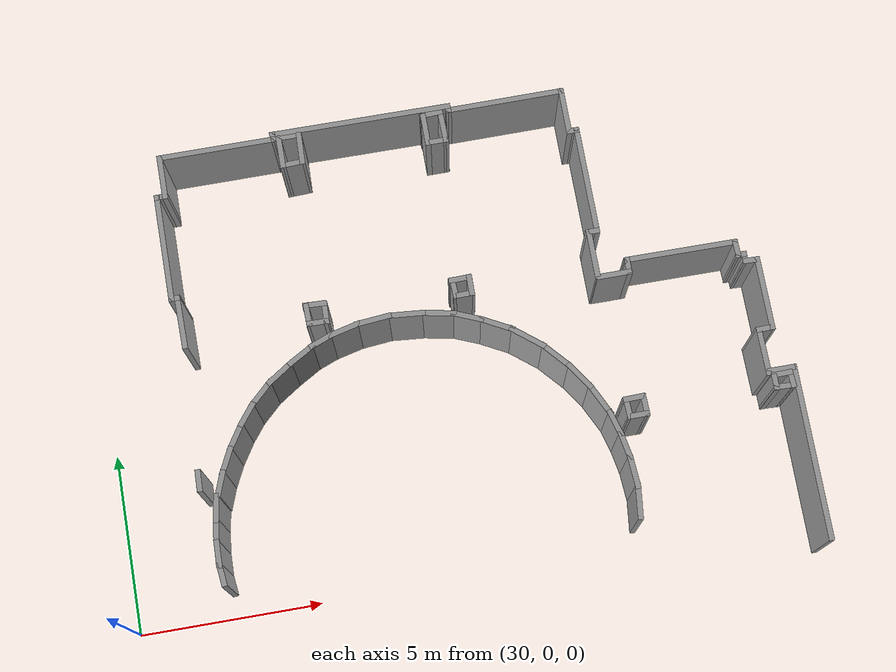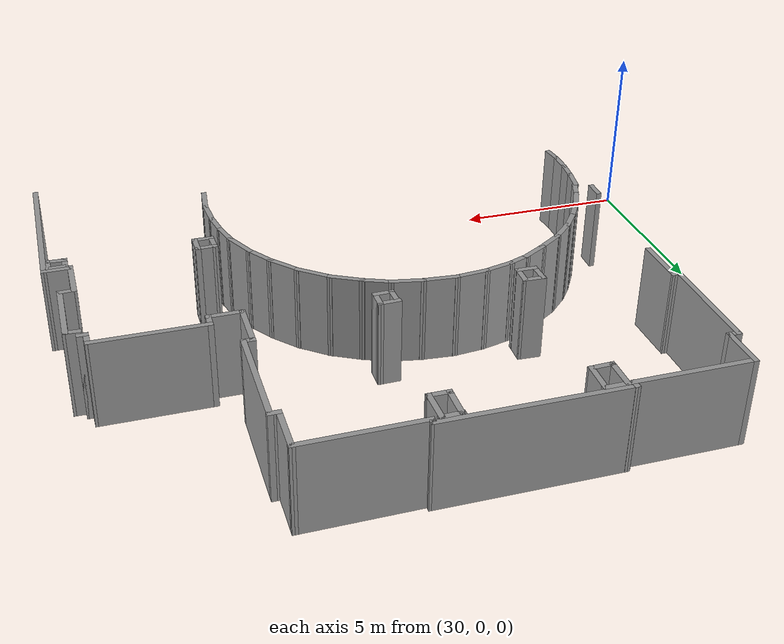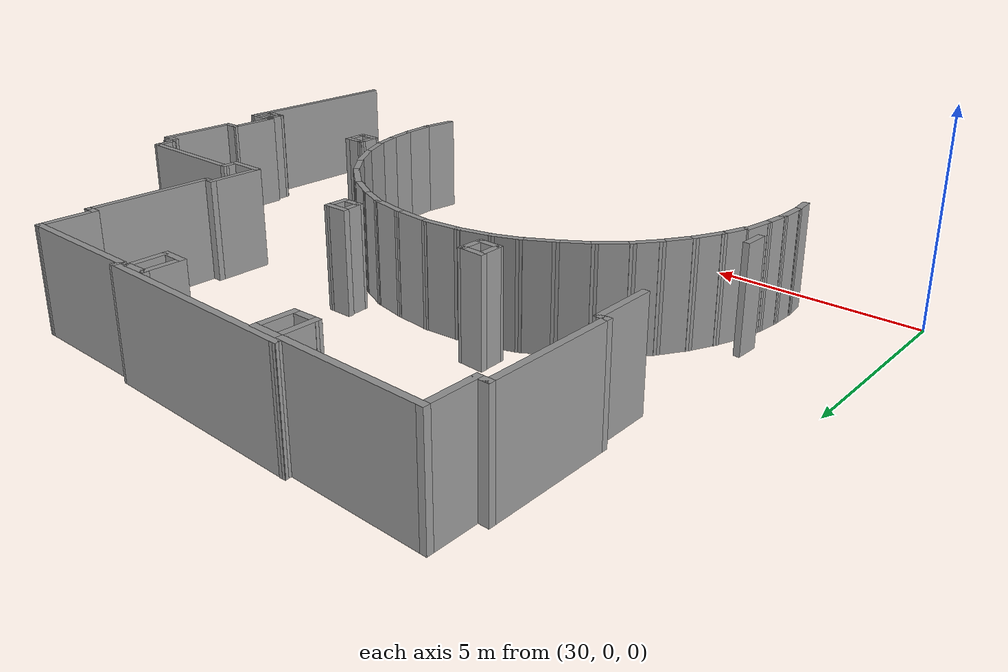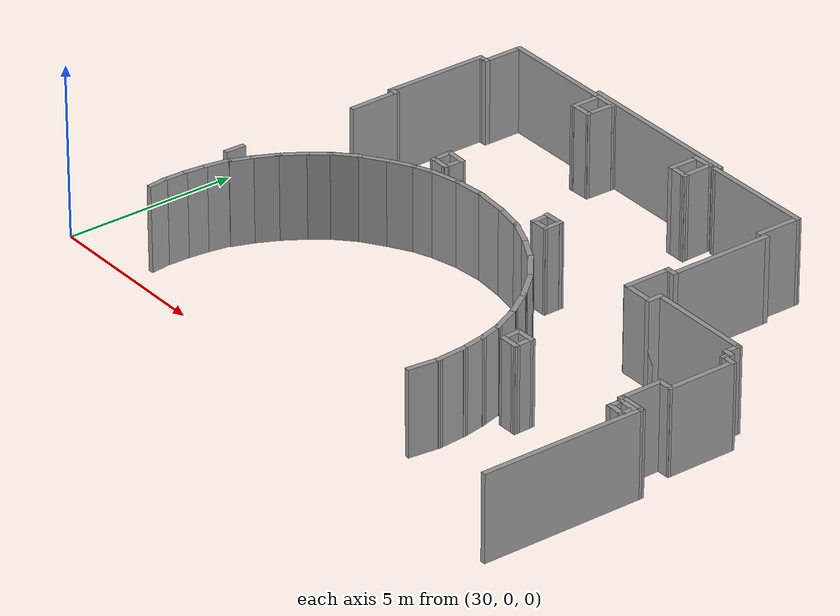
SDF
<sdf version="1.7">
 <model name="TD_n1_largo">
  <pose>-6.3187 -9.13173 0 0 -0 0</pose>
  <link name="Wall_473">
   <collision name="Wall_473_Collision">
    <geometry><box><size>4.81788 0.15 2.5</size></box></geometry>
    <pose>0 0 1.25 0 -0 0</pose>
   </collision>
   <visual name="Wall_473_Visual">
    <pose>0 0 1.25 0 -0 0</pose>
    <geometry><box><size>4.81788 0.15 2.5</size></box></geometry>
    <material>
     <script><uri>file://media/materials/scripts/gazebo.material</uri><name>Gazebo/Grey</name></script>
     <ambient>1 1 1 1</ambient>
    </material>
    <meta><layer>0</layer></meta>
   </visual>
   <pose>54.8661 10.5616 0 0 -0 1.56429</pose>
  </link>
  <link name="Wall_474">
   <collision name="Wall_474_Collision">
    <geometry><box><size>0.817 0.15 2.5</size></box></geometry>
    <pose>0 0 1.25 0 -0 0</pose>
   </collision>
   <visual name="Wall_474_Visual">
    <pose>0 0 1.25 0 -0 0</pose>
    <geometry><box><size>0.817 0.15 2.5</size></box></geometry>
    <material>
     <script><uri>file://media/materials/scripts/gazebo.material</uri><name>Gazebo/Grey</name></script>
     <ambient>1 1 1 1</ambient>
    </material>
    <meta><layer>0</layer></meta>
   </visual>
   <pose>54.5478 12.8955 0 0 -0 3.14159</pose>
  </link>
  <link name="Wall_476">
   <collision name="Wall_476_Collision">
    <geometry><box><size>0.622061 0.15 2.5</size></box></geometry>
    <pose>0 0 1.25 0 -0 0</pose>
   </collision>
   <visual name="Wall_476_Visual">
    <pose>0 0 1.25 0 -0 0</pose>
    <geometry><box><size>0.622061 0.15 2.5</size></box></geometry>
    <material>
     <script><uri>file://media/materials/scripts/gazebo.material</uri><name>Gazebo/Grey</name></script>
     <ambient>1 1 1 1</ambient>
    </material>
    <meta><layer>0</layer></meta>
   </visual>
   <pose>50.2813 12.5677 0 0 -0 1.61954</pose>
  </link>
  <link name="Wall_477">
   <collision name="Wall_477_Collision">
    <geometry><box><size>0.62164 0.15 2.5</size></box></geometry>
    <pose>0 0 1.25 0 -0 0</pose>
   </collision>
   <visual name="Wall_477_Visual">
    <pose>0 0 1.25 0 -0 0</pose>
    <geometry><box><size>0.62164 0.15 2.5</size></box></geometry>
    <material>
     <script><uri>file://media/materials/scripts/gazebo.material</uri><name>Gazebo/Grey</name></script>
     <ambient>1 1 1 1</ambient>
    </material>
    <meta><layer>0</layer></meta>
   </visual>
   <pose>50.5055 12.8092 0 0 -0 0.024385</pose>
  </link>
  <link name="Wall_478">
   <collision name="Wall_478_Collision">
    <geometry><box><size>0.633137 0.15 2.5</size></box></geometry>
    <pose>0 0 1.25 0 -0 0</pose>
   </collision>
   <visual name="Wall_478_Visual">
    <pose>0 0 1.25 0 -0 0</pose>
    <geometry><box><size>0.633137 0.15 2.5</size></box></geometry>
    <material>
     <script><uri>file://media/materials/scripts/gazebo.material</uri><name>Gazebo/Grey</name></script>
     <ambient>1 1 1 1</ambient>
    </material>
    <meta><layer>0</layer></meta>
   </visual>
   <pose>50.747 12.5735 0 0 -0 -1.54699</pose>
  </link>
  <link name="Wall_479">
   <collision name="Wall_479_Collision">
    <geometry><box><size>0.61 0.15 2.5</size></box></geometry>
    <pose>0 0 1.25 0 -0 0</pose>
   </collision>
   <visual name="Wall_479_Visual">
    <pose>0 0 1.25 0 -0 0</pose>
    <geometry><box><size>0.61 0.15 2.5</size></box></geometry>
    <material>
     <script><uri>file://media/materials/scripts/gazebo.material</uri><name>Gazebo/Grey</name></script>
     <ambient>1 1 1 1</ambient>
    </material>
    <meta><layer>0</layer></meta>
   </visual>
   <pose>50.5228 12.332 0 0 -0 3.14159</pose>
  </link>
  <link name="Wall_528">
   <collision name="Wall_528_Collision">
    <geometry><box><size>0.599844 0.15 2.5</size></box></geometry>
    <pose>0 0 1.25 0 -0 0</pose>
   </collision>
   <visual name="Wall_528_Visual">
    <pose>0 0 1.25 0 -0 0</pose>
    <geometry><box><size>0.599844 0.15 2.5</size></box></geometry>
    <material>
     <script><uri>file://media/materials/scripts/gazebo.material</uri><name>Gazebo/Grey</name></script>
     <ambient>1 1 1 1</ambient>
    </material>
    <meta><layer>0</layer></meta>
   </visual>
   <pose>38.7379 12.6184 0 0 -0 -1.6002</pose>
  </link>
  <link name="Wall_532">
   <collision name="Wall_532_Collision">
    <geometry><box><size>0.640918 0.15 2.5</size></box></geometry>
    <pose>0 0 1.25 0 -0 0</pose>
   </collision>
   <visual name="Wall_532_Visual">
    <pose>0 0 1.25 0 -0 0</pose>
    <geometry><box><size>0.640918 0.15 2.5</size></box></geometry>
    <material>
     <script><uri>file://media/materials/scripts/gazebo.material</uri><name>Gazebo/Grey</name></script>
     <ambient>1 1 1 1</ambient>
    </material>
    <meta><layer>0</layer></meta>
   </visual>
   <pose>46.4985 16.8702 0 0 -0 0.020405</pose>
  </link>
  <link name="Wall_533">
   <collision name="Wall_533_Collision">
    <geometry><box><size>0.6 0.15 2.5</size></box></geometry>
    <pose>0 0 1.25 0 -0 0</pose>
   </collision>
   <visual name="Wall_533_Visual">
    <pose>0 0 1.25 0 -0 0</pose>
    <geometry><box><size>0.6 0.15 2.5</size></box></geometry>
    <material>
     <script><uri>file://media/materials/scripts/gazebo.material</uri><name>Gazebo/Grey</name></script>
     <ambient>1 1 1 1</ambient>
    </material>
    <meta><layer>0</layer></meta>
   </visual>
   <pose>46.7435 16.6502 0 0 -0 -1.5708</pose>
  </link>
  <link name="Wall_534">
   <collision name="Wall_534_Collision">
    <geometry><box><size>0.590114 0.15 2.5</size></box></geometry>
    <pose>0 0 1.25 0 -0 0</pose>
   </collision>
   <visual name="Wall_534_Visual">
    <pose>0 0 1.25 0 -0 0</pose>
    <geometry><box><size>0.590114 0.15 2.5</size></box></geometry>
    <material>
     <script><uri>file://media/materials/scripts/gazebo.material</uri><name>Gazebo/Grey</name></script>
     <ambient>1 1 1 1</ambient>
    </material>
    <meta><layer>0</layer></meta>
   </visual>
   <pose>46.5235 16.4202 0 0 -0 -3.11887</pose>
  </link>
  <link name="Wall_535">
   <collision name="Wall_535_Collision">
    <geometry><box><size>0.530526 0.15 2.5</size></box></geometry>
    <pose>0 0 1.25 0 -0 0</pose>
   </collision>
   <visual name="Wall_535_Visual">
    <pose>0 0 1.25 0 -0 0</pose>
    <geometry><box><size>0.530526 0.15 2.5</size></box></geometry>
    <material>
     <script><uri>file://media/materials/scripts/gazebo.material</uri><name>Gazebo/Grey</name></script>
     <ambient>1 1 1 1</ambient>
    </material>
    <meta><layer>0</layer></meta>
   </visual>
   <pose>46.2935 16.6052 0 0 -0 1.62338</pose>
  </link>
  <link name="Wall_537">
   <collision name="Wall_537_Collision">
    <geometry><box><size>0.590114 0.15 2.5</size></box></geometry>
    <pose>0 0 1.25 0 -0 0</pose>
   </collision>
   <visual name="Wall_537_Visual">
    <pose>0 0 1.25 0 -0 0</pose>
    <geometry><box><size>0.590114 0.15 2.5</size></box></geometry>
    <material>
     <script><uri>file://media/materials/scripts/gazebo.material</uri><name>Gazebo/Grey</name></script>
     <ambient>1 1 1 1</ambient>
    </material>
    <meta><layer>0</layer></meta>
   </visual>
   <pose>54.5235 12.7702 0 0 -0 0.022723</pose>
  </link>
  <link name="Wall_538">
   <collision name="Wall_538_Collision">
    <geometry><box><size>0.511248 0.15 2.5</size></box></geometry>
    <pose>0 0 1.25 0 -0 0</pose>
   </collision>
   <visual name="Wall_538_Visual">
    <pose>0 0 1.25 0 -0 0</pose>
    <geometry><box><size>0.511248 0.15 2.5</size></box></geometry>
    <material>
     <script><uri>file://media/materials/scripts/gazebo.material</uri><name>Gazebo/Grey</name></script>
     <ambient>1 1 1 1</ambient>
    </material>
    <meta><layer>0</layer></meta>
   </visual>
   <pose>54.7535 12.5952 0 0 -0 -1.5153</pose>
  </link>
  <link name="Wall_539">
   <collision name="Wall_539_Collision">
    <geometry><box><size>0.610435 0.15 2.5</size></box></geometry>
    <pose>0 0 1.25 0 -0 0</pose>
   </collision>
   <visual name="Wall_539_Visual">
    <pose>0 0 1.25 0 -0 0</pose>
    <geometry><box><size>0.610435 0.15 2.5</size></box></geometry>
    <material>
     <script><uri>file://media/materials/scripts/gazebo.material</uri><name>Gazebo/Grey</name></script>
     <ambient>1 1 1 1</ambient>
    </material>
    <meta><layer>0</layer></meta>
   </visual>
   <pose>54.5335 12.4252 0 0 -0 3.09814</pose>
  </link>
  <link name="Wall_540">
   <collision name="Wall_540_Collision">
    <geometry><box><size>0.48 0.15 2.5</size></box></geometry>
    <pose>0 0 1.25 0 -0 0</pose>
   </collision>
   <visual name="Wall_540_Visual">
    <pose>0 0 1.25 0 -0 0</pose>
    <geometry><box><size>0.48 0.15 2.5</size></box></geometry>
    <material>
     <script><uri>file://media/materials/scripts/gazebo.material</uri><name>Gazebo/Grey</name></script>
     <ambient>1 1 1 1</ambient>
    </material>
    <meta><layer>0</layer></meta>
   </visual>
   <pose>54.3035 12.5902 0 0 -0 1.5708</pose>
  </link>
  <link name="Wall_542">
   <collision name="Wall_542_Collision">
    <geometry><box><size>1.36004 0.15 2.5</size></box></geometry>
    <pose>0 0 1.25 0 -0 0</pose>
   </collision>
   <visual name="Wall_542_Visual">
    <pose>0 0 1.25 0 -0 0</pose>
    <geometry><box><size>1.36004 0.15 2.5</size></box></geometry>
    <material>
     <script><uri>file://media/materials/scripts/gazebo.material</uri><name>Gazebo/Grey</name></script>
     <ambient>1 1 1 1</ambient>
    </material>
    <meta><layer>0</layer></meta>
   </visual>
   <pose>54.1785 13.4602 0 0 -0 1.57906</pose>
  </link>
  <link name="Wall_543">
   <collision name="Wall_543_Collision">
    <geometry><box><size>0.520135 0.15 2.5</size></box></geometry>
    <pose>0 0 1.25 0 -0 0</pose>
   </collision>
   <visual name="Wall_543_Visual">
    <pose>0 0 1.25 0 -0 0</pose>
    <geometry><box><size>0.520135 0.15 2.5</size></box></geometry>
    <material>
     <script><uri>file://media/materials/scripts/gazebo.material</uri><name>Gazebo/Grey</name></script>
     <ambient>1 1 1 1</ambient>
    </material>
    <meta><layer>0</layer></meta>
   </visual>
   <pose>54.3585 14.0702 0 0 -0 0.02702</pose>
  </link>
  <link name="Wall_544">
   <collision name="Wall_544_Collision">
    <geometry><box><size>2.08003 0.15 2.5</size></box></geometry>
    <pose>0 0 1.25 0 -0 0</pose>
   </collision>
   <visual name="Wall_544_Visual">
    <pose>0 0 1.25 0 -0 0</pose>
    <geometry><box><size>2.08003 0.15 2.5</size></box></geometry>
    <material>
     <script><uri>file://media/materials/scripts/gazebo.material</uri><name>Gazebo/Grey</name></script>
     <ambient>1 1 1 1</ambient>
    </material>
    <meta><layer>0</layer></meta>
   </visual>
   <pose>54.5435 15.0402 0 0 -0 1.5708</pose>
  </link>
  <link name="Wall_545">
   <collision name="Wall_545_Collision">
    <geometry><box><size>0.47 0.15 2.5</size></box></geometry>
    <pose>0 0 1.25 0 -0 0</pose>
   </collision>
   <visual name="Wall_545_Visual">
    <pose>0 0 1.25 0 -0 0</pose>
    <geometry><box><size>0.47 0.15 2.5</size></box></geometry>
    <material>
     <script><uri>file://media/materials/scripts/gazebo.material</uri><name>Gazebo/Grey</name></script>
     <ambient>1 1 1 1</ambient>
    </material>
    <meta><layer>0</layer></meta>
   </visual>
   <pose>54.3835 16.0102 0 0 -0 3.11035</pose>
  </link>
  <link name="Wall_546">
   <collision name="Wall_546_Collision">
    <geometry><box><size>0.35 0.15 2.5</size></box></geometry>
    <pose>0 0 1.25 0 -0 0</pose>
   </collision>
   <visual name="Wall_546_Visual">
    <pose>0 0 1.25 0 -0 0</pose>
    <geometry><box><size>0.35 0.15 2.5</size></box></geometry>
    <material>
     <script><uri>file://media/materials/scripts/gazebo.material</uri><name>Gazebo/Grey</name></script>
     <ambient>1 1 1 1</ambient>
    </material>
    <meta><layer>0</layer></meta>
   </visual>
   <pose>54.2235 16.1152 0 0 -0 1.5708</pose>
  </link>
  <link name="Wall_547">
   <collision name="Wall_547_Collision">
    <geometry><box><size>0.310312 0.15 2.5</size></box></geometry>
    <pose>0 0 1.25 0 -0 0</pose>
   </collision>
   <visual name="Wall_547_Visual">
    <pose>0 0 1.25 0 -0 0</pose>
    <geometry><box><size>0.310312 0.15 2.5</size></box></geometry>
    <material>
     <script><uri>file://media/materials/scripts/gazebo.material</uri><name>Gazebo/Grey</name></script>
     <ambient>1 1 1 1</ambient>
    </material>
    <meta><layer>0</layer></meta>
   </visual>
   <pose>54.1435 16.2152 0 0 -0 3.14159</pose>
  </link>
  <link name="Wall_548">
   <collision name="Wall_548_Collision">
    <geometry><box><size>0.530132 0.15 2.5</size></box></geometry>
    <pose>0 0 1.25 0 -0 0</pose>
   </collision>
   <visual name="Wall_548_Visual">
    <pose>0 0 1.25 0 -0 0</pose>
    <geometry><box><size>0.530132 0.15 2.5</size></box></geometry>
    <material>
     <script><uri>file://media/materials/scripts/gazebo.material</uri><name>Gazebo/Grey</name></script>
     <ambient>1 1 1 1</ambient>
    </material>
    <meta><layer>0</layer></meta>
   </visual>
   <pose>54.0585 16.4052 0 0 -0 1.59711</pose>
  </link>
  <link name="Wall_549">
   <collision name="Wall_549_Collision">
    <geometry><box><size>3.15 0.15 2.5</size></box></geometry>
    <pose>0 0 1.25 0 -0 0</pose>
   </collision>
   <visual name="Wall_549_Visual">
    <pose>0 0 1.25 0 -0 0</pose>
    <geometry><box><size>3.15 0.15 2.5</size></box></geometry>
    <material>
     <script><uri>file://media/materials/scripts/gazebo.material</uri><name>Gazebo/Grey</name></script>
     <ambient>1 1 1 1</ambient>
    </material>
    <meta><layer>0</layer></meta>
   </visual>
   <pose>52.5535 16.6002 0 0 -0 3.13826</pose>
  </link>
  <link name="Wall_550">
   <collision name="Wall_550_Collision">
    <geometry><box><size>0.490588 0.15 2.5</size></box></geometry>
    <pose>0 0 1.25 0 -0 0</pose>
   </collision>
   <visual name="Wall_550_Visual">
    <pose>0 0 1.25 0 -0 0</pose>
    <geometry><box><size>0.490588 0.15 2.5</size></box></geometry>
    <material>
     <script><uri>file://media/materials/scripts/gazebo.material</uri><name>Gazebo/Grey</name></script>
     <ambient>1 1 1 1</ambient>
    </material>
    <meta><layer>0</layer></meta>
   </visual>
   <pose>51.0535 16.4352 0 0 -0 -1.5708</pose>
  </link>
  <link name="Wall_551">
   <collision name="Wall_551_Collision">
    <geometry><box><size>0.98 0.15 2.5</size></box></geometry>
    <pose>0 0 1.25 0 -0 0</pose>
   </collision>
   <visual name="Wall_551_Visual">
    <pose>0 0 1.25 0 -0 0</pose>
    <geometry><box><size>0.98 0.15 2.5</size></box></geometry>
    <material>
     <script><uri>file://media/materials/scripts/gazebo.material</uri><name>Gazebo/Grey</name></script>
     <ambient>1 1 1 1</ambient>
    </material>
    <meta><layer>0</layer></meta>
   </visual>
   <pose>50.6385 16.2652 0 0 -0 3.14159</pose>
  </link>
  <link name="Wall_553">
   <collision name="Wall_553_Collision">
    <geometry><box><size>1.42677 0.15 2.5</size></box></geometry>
    <pose>0 0 1.25 0 -0 0</pose>
   </collision>
   <visual name="Wall_553_Visual">
    <pose>0 0 1.25 0 -0 0</pose>
    <geometry><box><size>1.42677 0.15 2.5</size></box></geometry>
    <material>
     <script><uri>file://media/materials/scripts/gazebo.material</uri><name>Gazebo/Grey</name></script>
     <ambient>1 1 1 1</ambient>
    </material>
    <meta><layer>0</layer></meta>
   </visual>
   <pose>50.1847 16.9281 0 0 -0 1.5708</pose>
  </link>
  <link name="Wall_554">
   <collision name="Wall_554_Collision">
    <geometry><box><size>0.378043 0.15 2.5</size></box></geometry>
    <pose>0 0 1.25 0 -0 0</pose>
   </collision>
   <visual name="Wall_554_Visual">
    <pose>0 0 1.25 0 -0 0</pose>
    <geometry><box><size>0.378043 0.15 2.5</size></box></geometry>
    <material>
     <script><uri>file://media/materials/scripts/gazebo.material</uri><name>Gazebo/Grey</name></script>
     <ambient>1 1 1 1</ambient>
    </material>
    <meta><layer>0</layer></meta>
   </visual>
   <pose>50.2983 17.5665 0 0 -0 0</pose>
  </link>
  <link name="Wall_555">
   <collision name="Wall_555_Collision">
    <geometry><box><size>3.10582 0.15 2.5</size></box></geometry>
    <pose>0 0 1.25 0 -0 0</pose>
   </collision>
   <visual name="Wall_555_Visual">
    <pose>0 0 1.25 0 -0 0</pose>
    <geometry><box><size>3.10582 0.15 2.5</size></box></geometry>
    <material>
     <script><uri>file://media/materials/scripts/gazebo.material</uri><name>Gazebo/Grey</name></script>
     <ambient>1 1 1 1</ambient>
    </material>
    <meta><layer>0</layer></meta>
   </visual>
   <pose>50.412 19.0444 0 0 -0 1.5708</pose>
  </link>
  <link name="Wall_556">
   <collision name="Wall_556_Collision">
    <geometry><box><size>0.359881 0.15 2.5</size></box></geometry>
    <pose>0 0 1.25 0 -0 0</pose>
   </collision>
   <visual name="Wall_556_Visual">
    <pose>0 0 1.25 0 -0 0</pose>
    <geometry><box><size>0.359881 0.15 2.5</size></box></geometry>
    <material>
     <script><uri>file://media/materials/scripts/gazebo.material</uri><name>Gazebo/Grey</name></script>
     <ambient>1 1 1 1</ambient>
    </material>
    <meta><layer>0</layer></meta>
   </visual>
   <pose>50.3071 20.5223 0 0 -0 3.14159</pose>
  </link>
  <link name="Wall_557">
   <collision name="Wall_557_Collision">
    <geometry><box><size>1.35694 0.15 2.5</size></box></geometry>
    <pose>0 0 1.25 0 -0 0</pose>
   </collision>
   <visual name="Wall_557_Visual">
    <pose>0 0 1.25 0 -0 0</pose>
    <geometry><box><size>1.35694 0.15 2.5</size></box></geometry>
    <material>
     <script><uri>file://media/materials/scripts/gazebo.material</uri><name>Gazebo/Grey</name></script>
     <ambient>1 1 1 1</ambient>
    </material>
    <meta><layer>0</layer></meta>
   </visual>
   <pose>50.2021 21.1257 0 0 -0 1.5708</pose>
  </link>
  <link name="Wall_558">
   <collision name="Wall_558_Collision">
    <geometry><box><size>3.33324 0.15 2.5</size></box></geometry>
    <pose>0 0 1.25 0 -0 0</pose>
   </collision>
   <visual name="Wall_558_Visual">
    <pose>0 0 1.25 0 -0 0</pose>
    <geometry><box><size>3.33324 0.15 2.5</size></box></geometry>
    <material>
     <script><uri>file://media/materials/scripts/gazebo.material</uri><name>Gazebo/Grey</name></script>
     <ambient>1 1 1 1</ambient>
    </material>
    <meta><layer>0</layer></meta>
   </visual>
   <pose>48.6106 21.7204 0 0 -0 -3.1361</pose>
  </link>
  <link name="Wall_559">
   <collision name="Wall_559_Collision">
    <geometry><box><size>0.27243 0.15 2.5</size></box></geometry>
    <pose>0 0 1.25 0 -0 0</pose>
   </collision>
   <visual name="Wall_559_Visual">
    <pose>0 0 1.25 0 -0 0</pose>
    <geometry><box><size>0.27243 0.15 2.5</size></box></geometry>
    <material>
     <script><uri>file://media/materials/scripts/gazebo.material</uri><name>Gazebo/Grey</name></script>
     <ambient>1 1 1 1</ambient>
    </material>
    <meta><layer>0</layer></meta>
   </visual>
   <pose>47.019 21.7728 0 0 -0 1.5708</pose>
  </link>
  <link name="Wall_560">
   <collision name="Wall_560_Collision">
    <geometry><box><size>5.06483 0.15 2.5</size></box></geometry>
    <pose>0 0 1.25 0 -0 0</pose>
   </collision>
   <visual name="Wall_560_Visual">
    <pose>0 0 1.25 0 -0 0</pose>
    <geometry><box><size>5.06483 0.15 2.5</size></box></geometry>
    <material>
     <script><uri>file://media/materials/scripts/gazebo.material</uri><name>Gazebo/Grey</name></script>
     <ambient>1 1 1 1</ambient>
    </material>
    <meta><layer>0</layer></meta>
   </visual>
   <pose>44.5616 21.8428 0 0 -0 3.13803</pose>
  </link>
  <link name="Wall_561">
   <collision name="Wall_561_Collision">
    <geometry><box><size>0.291009 0.15 2.5</size></box></geometry>
    <pose>0 0 1.25 0 -0 0</pose>
   </collision>
   <visual name="Wall_561_Visual">
    <pose>0 0 1.25 0 -0 0</pose>
    <geometry><box><size>0.291009 0.15 2.5</size></box></geometry>
    <material>
     <script><uri>file://media/materials/scripts/gazebo.material</uri><name>Gazebo/Grey</name></script>
     <ambient>1 1 1 1</ambient>
    </material>
    <meta><layer>0</layer></meta>
   </visual>
   <pose>42.113 21.7816 0 0 -0 -1.44644</pose>
  </link>
  <link name="Wall_562">
   <collision name="Wall_562_Collision">
    <geometry><box><size>3.33324 0.15 2.5</size></box></geometry>
    <pose>0 0 1.25 0 -0 0</pose>
   </collision>
   <visual name="Wall_562_Visual">
    <pose>0 0 1.25 0 -0 0</pose>
    <geometry><box><size>3.33324 0.15 2.5</size></box></geometry>
    <material>
     <script><uri>file://media/materials/scripts/gazebo.material</uri><name>Gazebo/Grey</name></script>
     <ambient>1 1 1 1</ambient>
    </material>
    <meta><layer>0</layer></meta>
   </visual>
   <pose>40.5301 21.7116 0 0 -0 3.14159</pose>
  </link>
  <link name="Wall_563">
   <collision name="Wall_563_Collision">
    <geometry><box><size>1.2695 0.15 2.5</size></box></geometry>
    <pose>0 0 1.25 0 -0 0</pose>
   </collision>
   <visual name="Wall_563_Visual">
    <pose>0 0 1.25 0 -0 0</pose>
    <geometry><box><size>1.2695 0.15 2.5</size></box></geometry>
    <material>
     <script><uri>file://media/materials/scripts/gazebo.material</uri><name>Gazebo/Grey</name></script>
     <ambient>1 1 1 1</ambient>
    </material>
    <meta><layer>0</layer></meta>
   </visual>
   <pose>38.9385 21.1519 0 0 -0 -1.5708</pose>
  </link>
  <link name="Wall_564">
   <collision name="Wall_564_Collision">
    <geometry><box><size>0.378043 0.15 2.5</size></box></geometry>
    <pose>0 0 1.25 0 -0 0</pose>
   </collision>
   <visual name="Wall_564_Visual">
    <pose>0 0 1.25 0 -0 0</pose>
    <geometry><box><size>0.378043 0.15 2.5</size></box></geometry>
    <material>
     <script><uri>file://media/materials/scripts/gazebo.material</uri><name>Gazebo/Grey</name></script>
     <ambient>1 1 1 1</ambient>
    </material>
    <meta><layer>0</layer></meta>
   </visual>
   <pose>38.8249 20.5923 0 0 -0 3.14159</pose>
  </link>
  <link name="Wall_565">
   <collision name="Wall_565_Collision">
    <geometry><box><size>3.07084 0.15 2.5</size></box></geometry>
    <pose>0 0 1.25 0 -0 0</pose>
   </collision>
   <visual name="Wall_565_Visual">
    <pose>0 0 1.25 0 -0 0</pose>
    <geometry><box><size>3.07084 0.15 2.5</size></box></geometry>
    <material>
     <script><uri>file://media/materials/scripts/gazebo.material</uri><name>Gazebo/Grey</name></script>
     <ambient>1 1 1 1</ambient>
    </material>
    <meta><layer>0</layer></meta>
   </visual>
   <pose>38.7112 19.1318 0 0 -0 -1.5708</pose>
  </link>
  <link name="Wall_566">
   <collision name="Wall_566_Collision">
    <geometry><box><size>0.307411 0.15 2.5</size></box></geometry>
    <pose>0 0 1.25 0 -0 0</pose>
   </collision>
   <visual name="Wall_566_Visual">
    <pose>0 0 1.25 0 -0 0</pose>
    <geometry><box><size>0.307411 0.15 2.5</size></box></geometry>
    <material>
     <script><uri>file://media/materials/scripts/gazebo.material</uri><name>Gazebo/Grey</name></script>
     <ambient>1 1 1 1</ambient>
    </material>
    <meta><layer>0</layer></meta>
   </visual>
   <pose>38.7899 17.6714 0 0 -0 0</pose>
  </link>
  <link name="Wall_567">
   <collision name="Wall_567_Collision">
    <geometry><box><size>1.51434 0.15 2.5</size></box></geometry>
    <pose>0 0 1.25 0 -0 0</pose>
   </collision>
   <visual name="Wall_567_Visual">
    <pose>0 0 1.25 0 -0 0</pose>
    <geometry><box><size>1.51434 0.15 2.5</size></box></geometry>
    <material>
     <script><uri>file://media/materials/scripts/gazebo.material</uri><name>Gazebo/Grey</name></script>
     <ambient>1 1 1 1</ambient>
    </material>
    <meta><layer>0</layer></meta>
   </visual>
   <pose>38.8773 16.9893 0 0 -0 -1.55798</pose>
  </link>
  <link name="Wall_571">
   <collision name="Wall_571_Collision">
    <geometry><box><size>0.656522 0.15 2.5</size></box></geometry>
    <pose>0 0 1.25 0 -0 0</pose>
   </collision>
   <visual name="Wall_571_Visual">
    <pose>0 0 1.25 0 -0 0</pose>
    <geometry><box><size>0.656522 0.15 2.5</size></box></geometry>
    <material>
     <script><uri>file://media/materials/scripts/gazebo.material</uri><name>Gazebo/Grey</name></script>
     <ambient>1 1 1 1</ambient>
    </material>
    <meta><layer>0</layer></meta>
   </visual>
   <pose>42.5035 16.8463 0 0 -0 -0.045423</pose>
  </link>
  <link name="Wall_572">
   <collision name="Wall_572_Collision">
    <geometry><box><size>0.656131 0.15 2.5</size></box></geometry>
    <pose>0 0 1.25 0 -0 0</pose>
   </collision>
   <visual name="Wall_572_Visual">
    <pose>0 0 1.25 0 -0 0</pose>
    <geometry><box><size>0.656131 0.15 2.5</size></box></geometry>
    <material>
     <script><uri>file://media/materials/scripts/gazebo.material</uri><name>Gazebo/Grey</name></script>
     <ambient>1 1 1 1</ambient>
    </material>
    <meta><layer>0</layer></meta>
   </visual>
   <pose>42.7507 16.5818 0 0 -0 -1.59352</pose>
  </link>
  <link name="Wall_573">
   <collision name="Wall_573_Collision">
    <geometry><box><size>0.6215 0.15 2.5</size></box></geometry>
    <pose>0 0 1.25 0 -0 0</pose>
   </collision>
   <visual name="Wall_573_Visual">
    <pose>0 0 1.25 0 -0 0</pose>
    <geometry><box><size>0.6215 0.15 2.5</size></box></geometry>
    <material>
     <script><uri>file://media/materials/scripts/gazebo.material</uri><name>Gazebo/Grey</name></script>
     <ambient>1 1 1 1</ambient>
    </material>
    <meta><layer>0</layer></meta>
   </visual>
   <pose>42.5092 16.3346 0 0 -0 3.11721</pose>
  </link>
  <link name="Wall_574">
   <collision name="Wall_574_Collision">
    <geometry><box><size>0.656131 0.15 2.5</size></box></geometry>
    <pose>0 0 1.25 0 -0 0</pose>
   </collision>
   <visual name="Wall_574_Visual">
    <pose>0 0 1.25 0 -0 0</pose>
    <geometry><box><size>0.656131 0.15 2.5</size></box></geometry>
    <material>
     <script><uri>file://media/materials/scripts/gazebo.material</uri><name>Gazebo/Grey</name></script>
     <ambient>1 1 1 1</ambient>
    </material>
    <meta><layer>0</layer></meta>
   </visual>
   <pose>42.2677 16.5933 0 0 -0 1.59352</pose>
  </link>
  <link name="Wall_577">
   <collision name="Wall_577_Collision">
    <geometry><box><size>0.693439 0.15 2.5</size></box></geometry>
    <pose>0 0 1.25 0 -0 0</pose>
   </collision>
   <visual name="Wall_577_Visual">
    <pose>0 0 1.25 0 -0 0</pose>
    <geometry><box><size>0.693439 0.15 2.5</size></box></geometry>
    <material>
     <script><uri>file://media/materials/scripts/gazebo.material</uri><name>Gazebo/Grey</name></script>
     <ambient>1 1 1 1</ambient>
    </material>
    <meta><layer>0</layer></meta>
   </visual>
   <pose>42.5279 20.9251 0 0 -0 0.03702</pose>
  </link>
  <link name="Wall_578">
   <collision name="Wall_578_Collision">
    <geometry><box><size>0.934687 0.15 2.5</size></box></geometry>
    <pose>0 0 1.25 0 -0 0</pose>
   </collision>
   <visual name="Wall_578_Visual">
    <pose>0 0 1.25 0 -0 0</pose>
    <geometry><box><size>0.934687 0.15 2.5</size></box></geometry>
    <material>
     <script><uri>file://media/materials/scripts/gazebo.material</uri><name>Gazebo/Grey</name></script>
     <ambient>1 1 1 1</ambient>
    </material>
    <meta><layer>0</layer></meta>
   </visual>
   <pose>42.8094 21.3274 0 0 -0 1.54516</pose>
  </link>
  <link name="Wall_579">
   <collision name="Wall_579_Collision">
    <geometry><box><size>0.71318 0.15 2.5</size></box></geometry>
    <pose>0 0 1.25 0 -0 0</pose>
   </collision>
   <visual name="Wall_579_Visual">
    <pose>0 0 1.25 0 -0 0</pose>
    <geometry><box><size>0.71318 0.15 2.5</size></box></geometry>
    <material>
     <script><uri>file://media/materials/scripts/gazebo.material</uri><name>Gazebo/Grey</name></script>
     <ambient>1 1 1 1</ambient>
    </material>
    <meta><layer>0</layer></meta>
   </visual>
   <pose>42.5379 21.7196 0 0 -0 3.14159</pose>
  </link>
  <link name="Wall_580">
   <collision name="Wall_580_Collision">
    <geometry><box><size>0.954543 0.15 2.5</size></box></geometry>
    <pose>0 0 1.25 0 -0 0</pose>
   </collision>
   <visual name="Wall_580_Visual">
    <pose>0 0 1.25 0 -0 0</pose>
    <geometry><box><size>0.954543 0.15 2.5</size></box></geometry>
    <material>
     <script><uri>file://media/materials/scripts/gazebo.material</uri><name>Gazebo/Grey</name></script>
     <ambient>1 1 1 1</ambient>
    </material>
    <meta><layer>0</layer></meta>
   </visual>
   <pose>42.2563 21.3174 0 0 -0 -1.5708</pose>
  </link>
  <link name="Wall_582">
   <collision name="Wall_582_Collision">
    <geometry><box><size>0.652839 0.15 2.5</size></box></geometry>
    <pose>0 0 1.25 0 -0 0</pose>
   </collision>
   <visual name="Wall_582_Visual">
    <pose>0 0 1.25 0 -0 0</pose>
    <geometry><box><size>0.652839 0.15 2.5</size></box></geometry>
    <material>
     <script><uri>file://media/materials/scripts/gazebo.material</uri><name>Gazebo/Grey</name></script>
     <ambient>1 1 1 1</ambient>
    </material>
    <meta><layer>0</layer></meta>
   </visual>
   <pose>46.5305 21.6895 0 0 -0 0.039979</pose>
  </link>
  <link name="Wall_583">
   <collision name="Wall_583_Collision">
    <geometry><box><size>0.974656 0.15 2.5</size></box></geometry>
    <pose>0 0 1.25 0 -0 0</pose>
   </collision>
   <visual name="Wall_583_Visual">
    <pose>0 0 1.25 0 -0 0</pose>
    <geometry><box><size>0.974656 0.15 2.5</size></box></geometry>
    <material>
     <script><uri>file://media/materials/scripts/gazebo.material</uri><name>Gazebo/Grey</name></script>
     <ambient>1 1 1 1</ambient>
    </material>
    <meta><layer>0</layer></meta>
   </visual>
   <pose>46.7919 21.2872 0 0 -0 -1.54641</pose>
  </link>
  <link name="Wall_584">
   <collision name="Wall_584_Collision">
    <geometry><box><size>0.652839 0.15 2.5</size></box></geometry>
    <pose>0 0 1.25 0 -0 0</pose>
   </collision>
   <visual name="Wall_584_Visual">
    <pose>0 0 1.25 0 -0 0</pose>
    <geometry><box><size>0.652839 0.15 2.5</size></box></geometry>
    <material>
     <script><uri>file://media/materials/scripts/gazebo.material</uri><name>Gazebo/Grey</name></script>
     <ambient>1 1 1 1</ambient>
    </material>
    <meta><layer>0</layer></meta>
   </visual>
   <pose>46.5506 20.8749 0 0 -0 3.14159</pose>
  </link>
  <link name="Wall_585">
   <collision name="Wall_585_Collision">
    <geometry><box><size>0.934429 0.15 2.5</size></box></geometry>
    <pose>0 0 1.25 0 -0 0</pose>
   </collision>
   <visual name="Wall_585_Visual">
    <pose>0 0 1.25 0 -0 0</pose>
    <geometry><box><size>0.934429 0.15 2.5</size></box></geometry>
    <material>
     <script><uri>file://media/materials/scripts/gazebo.material</uri><name>Gazebo/Grey</name></script>
     <ambient>1 1 1 1</ambient>
    </material>
    <meta><layer>0</layer></meta>
   </visual>
   <pose>46.2991 21.2671 0 0 -0 1.5708</pose>
  </link>
  <link name="Wall_613">
   <collision name="Wall_613_Collision">
    <geometry><box><size>0.975159 0.15 2.5</size></box></geometry>
    <pose>0 0 1.25 0 -0 0</pose>
   </collision>
   <visual name="Wall_613_Visual">
    <pose>0 0 1.25 0 -0 0</pose>
    <geometry><box><size>0.975159 0.15 2.5</size></box></geometry>
    <material>
     <script><uri>file://media/materials/scripts/gazebo.material</uri><name>Gazebo/Grey</name></script>
     <ambient>1 1 1 1</ambient>
    </material>
    <meta><layer>0</layer></meta>
   </visual>
   <pose>50.0837 10.0478 0 0 -0 1.45837</pose>
  </link>
  <link name="Wall_614">
   <collision name="Wall_614_Collision">
    <geometry><box><size>0.945261 0.15 2.5</size></box></geometry>
    <pose>0 0 1.25 0 -0 0</pose>
   </collision>
   <visual name="Wall_614_Visual">
    <pose>0 0 1.25 0 -0 0</pose>
    <geometry><box><size>0.945261 0.15 2.5</size></box></geometry>
    <material>
     <script><uri>file://media/materials/scripts/gazebo.material</uri><name>Gazebo/Grey</name></script>
     <ambient>1 1 1 1</ambient>
    </material>
    <meta><layer>0</layer></meta>
   </visual>
   <pose>50.1035 10.8546 0 0 -0 1.63736</pose>
  </link>
  <link name="Wall_615">
   <collision name="Wall_615_Collision">
    <geometry><box><size>0.821877 0.15 2.5</size></box></geometry>
    <pose>0 0 1.25 0 -0 0</pose>
   </collision>
   <visual name="Wall_615_Visual">
    <pose>0 0 1.25 0 -0 0</pose>
    <geometry><box><size>0.821877 0.15 2.5</size></box></geometry>
    <material>
     <script><uri>file://media/materials/scripts/gazebo.material</uri><name>Gazebo/Grey</name></script>
     <ambient>1 1 1 1</ambient>
    </material>
    <meta><layer>0</layer></meta>
   </visual>
   <pose>50.0175 11.5819 0 0 -0 1.74889</pose>
  </link>
  <link name="Wall_616">
   <collision name="Wall_616_Collision">
    <geometry><box><size>0.794914 0.15 2.5</size></box></geometry>
    <pose>0 0 1.25 0 -0 0</pose>
   </collision>
   <visual name="Wall_616_Visual">
    <pose>0 0 1.25 0 -0 0</pose>
    <geometry><box><size>0.794914 0.15 2.5</size></box></geometry>
    <material>
     <script><uri>file://media/materials/scripts/gazebo.material</uri><name>Gazebo/Grey</name></script>
     <ambient>1 1 1 1</ambient>
    </material>
    <meta><layer>0</layer></meta>
   </visual>
   <pose>49.8721 12.2234 0 0 -0 1.84065</pose>
  </link>
  <link name="Wall_617">
   <collision name="Wall_617_Collision">
    <geometry><box><size>1.03133 0.15 2.5</size></box></geometry>
    <pose>0 0 1.25 0 -0 0</pose>
   </collision>
   <visual name="Wall_617_Visual">
    <pose>0 0 1.25 0 -0 0</pose>
    <geometry><box><size>1.03133 0.15 2.5</size></box></geometry>
    <material>
     <script><uri>file://media/materials/scripts/gazebo.material</uri><name>Gazebo/Grey</name></script>
     <ambient>1 1 1 1</ambient>
    </material>
    <meta><layer>0</layer></meta>
   </visual>
   <pose>49.5943 12.9309 0 0 -0 2.02102</pose>
  </link>
  <link name="Wall_618">
   <collision name="Wall_618_Collision">
    <geometry><box><size>0.931283 0.15 2.5</size></box></geometry>
    <pose>0 0 1.25 0 -0 0</pose>
   </collision>
   <visual name="Wall_618_Visual">
    <pose>0 0 1.25 0 -0 0</pose>
    <geometry><box><size>0.931283 0.15 2.5</size></box></geometry>
    <material>
     <script><uri>file://media/materials/scripts/gazebo.material</uri><name>Gazebo/Grey</name></script>
     <ambient>1 1 1 1</ambient>
    </material>
    <meta><layer>0</layer></meta>
   </visual>
   <pose>49.1844 13.6517 0 0 -0 2.16349</pose>
  </link>
  <link name="Wall_619">
   <collision name="Wall_619_Collision">
    <geometry><box><size>1.04949 0.15 2.5</size></box></geometry>
    <pose>0 0 1.25 0 -0 0</pose>
   </collision>
   <visual name="Wall_619_Visual">
    <pose>0 0 1.25 0 -0 0</pose>
    <geometry><box><size>1.04949 0.15 2.5</size></box></geometry>
    <material>
     <script><uri>file://media/materials/scripts/gazebo.material</uri><name>Gazebo/Grey</name></script>
     <ambient>1 1 1 1</ambient>
    </material>
    <meta><layer>0</layer></meta>
   </visual>
   <pose>48.6686 14.3129 0 0 -0 2.29378</pose>
  </link>
  <link name="Wall_620">
   <collision name="Wall_620_Collision">
    <geometry><box><size>1.10008 0.15 2.5</size></box></geometry>
    <pose>0 0 1.25 0 -0 0</pose>
   </collision>
   <visual name="Wall_620_Visual">
    <pose>0 0 1.25 0 -0 0</pose>
    <geometry><box><size>1.10008 0.15 2.5</size></box></geometry>
    <material>
     <script><uri>file://media/materials/scripts/gazebo.material</uri><name>Gazebo/Grey</name></script>
     <ambient>1 1 1 1</ambient>
    </material>
    <meta><layer>0</layer></meta>
   </visual>
   <pose>48.0007 14.9477 0 0 -0 2.46468</pose>
  </link>
  <link name="Wall_622">
   <collision name="Wall_622_Collision">
    <geometry><box><size>1.01974 0.15 2.5</size></box></geometry>
    <pose>0 0 1.25 0 -0 0</pose>
   </collision>
   <visual name="Wall_622_Visual">
    <pose>0 0 1.25 0 -0 0</pose>
    <geometry><box><size>1.01974 0.15 2.5</size></box></geometry>
    <material>
     <script><uri>file://media/materials/scripts/gazebo.material</uri><name>Gazebo/Grey</name></script>
     <ambient>1 1 1 1</ambient>
    </material>
    <meta><layer>0</layer></meta>
   </visual>
   <pose>47.2469 15.4503 0 0 -0 2.65074</pose>
  </link>
  <link name="Wall_623">
   <collision name="Wall_623_Collision">
    <geometry><box><size>0.908912 0.15 2.5</size></box></geometry>
    <pose>0 0 1.25 0 -0 0</pose>
   </collision>
   <visual name="Wall_623_Visual">
    <pose>0 0 1.25 0 -0 0</pose>
    <geometry><box><size>0.908912 0.15 2.5</size></box></geometry>
    <material>
     <script><uri>file://media/materials/scripts/gazebo.material</uri><name>Gazebo/Grey</name></script>
     <ambient>1 1 1 1</ambient>
    </material>
    <meta><layer>0</layer></meta>
   </visual>
   <pose>46.5129 15.8007 0 0 -0 2.74814</pose>
  </link>
  <link name="Wall_624">
   <collision name="Wall_624_Collision">
    <geometry><box><size>0.998155 0.15 2.5</size></box></geometry>
    <pose>0 0 1.25 0 -0 0</pose>
   </collision>
   <visual name="Wall_624_Visual">
    <pose>0 0 1.25 0 -0 0</pose>
    <geometry><box><size>0.998155 0.15 2.5</size></box></geometry>
    <material>
     <script><uri>file://media/materials/scripts/gazebo.material</uri><name>Gazebo/Grey</name></script>
     <ambient>1 1 1 1</ambient>
    </material>
    <meta><layer>0</layer></meta>
   </visual>
   <pose>45.7459 16.0255 0 0 -0 2.95337</pose>
  </link>
  <link name="Wall_625">
   <collision name="Wall_625_Collision">
    <geometry><box><size>1.06597 0.15 2.5</size></box></geometry>
    <pose>0 0 1.25 0 -0 0</pose>
   </collision>
   <visual name="Wall_625_Visual">
    <pose>0 0 1.25 0 -0 0</pose>
    <geometry><box><size>1.06597 0.15 2.5</size></box></geometry>
    <material>
     <script><uri>file://media/materials/scripts/gazebo.material</uri><name>Gazebo/Grey</name></script>
     <ambient>1 1 1 1</ambient>
    </material>
    <meta><layer>0</layer></meta>
   </visual>
   <pose>44.873 16.1446 0 0 -0 3.05485</pose>
  </link>
  <link name="Wall_626">
   <collision name="Wall_626_Collision">
    <geometry><box><size>1.01328 0.15 2.5</size></box></geometry>
    <pose>0 0 1.25 0 -0 0</pose>
   </collision>
   <visual name="Wall_626_Visual">
    <pose>0 0 1.25 0 -0 0</pose>
    <geometry><box><size>1.01328 0.15 2.5</size></box></geometry>
    <material>
     <script><uri>file://media/materials/scripts/gazebo.material</uri><name>Gazebo/Grey</name></script>
     <ambient>1 1 1 1</ambient>
    </material>
    <meta><layer>0</layer></meta>
   </visual>
   <pose>43.9869 16.1446 0 0 -0 -3.04955</pose>
  </link>
  <link name="Wall_627">
   <collision name="Wall_627_Collision">
    <geometry><box><size>0.939079 0.15 2.5</size></box></geometry>
    <pose>0 0 1.25 0 -0 0</pose>
   </collision>
   <visual name="Wall_627_Visual">
    <pose>0 0 1.25 0 -0 0</pose>
    <geometry><box><size>0.939079 0.15 2.5</size></box></geometry>
    <material>
     <script><uri>file://media/materials/scripts/gazebo.material</uri><name>Gazebo/Grey</name></script>
     <ambient>1 1 1 1</ambient>
    </material>
    <meta><layer>0</layer></meta>
   </visual>
   <pose>43.1736 16.0123 0 0 -0 -2.90474</pose>
  </link>
  <link name="Wall_628">
   <collision name="Wall_628_Collision">
    <geometry><box><size>0.73205 0.15 2.5</size></box></geometry>
    <pose>0 0 1.25 0 -0 0</pose>
   </collision>
   <visual name="Wall_628_Visual">
    <pose>0 0 1.25 0 -0 0</pose>
    <geometry><box><size>0.73205 0.15 2.5</size></box></geometry>
    <material>
     <script><uri>file://media/materials/scripts/gazebo.material</uri><name>Gazebo/Grey</name></script>
     <ambient>1 1 1 1</ambient>
    </material>
    <meta><layer>0</layer></meta>
   </visual>
   <pose>42.519 15.8139 0 0 -0 -2.76952</pose>
  </link>
  <link name="Wall_629">
   <collision name="Wall_629_Collision">
    <geometry><box><size>0.88491 0.15 2.5</size></box></geometry>
    <pose>0 0 1.25 0 -0 0</pose>
   </collision>
   <visual name="Wall_629_Visual">
    <pose>0 0 1.25 0 -0 0</pose>
    <geometry><box><size>0.88491 0.15 2.5</size></box></geometry>
    <material>
     <script><uri>file://media/materials/scripts/gazebo.material</uri><name>Gazebo/Grey</name></script>
     <ambient>1 1 1 1</ambient>
    </material>
    <meta><layer>0</layer></meta>
   </visual>
   <pose>41.9305 15.523 0 0 -0 -2.61352</pose>
  </link>
  <link name="Wall_630">
   <collision name="Wall_630_Collision">
    <geometry><box><size>0.912935 0.15 2.5</size></box></geometry>
    <pose>0 0 1.25 0 -0 0</pose>
   </collision>
   <visual name="Wall_630_Visual">
    <pose>0 0 1.25 0 -0 0</pose>
    <geometry><box><size>0.912935 0.15 2.5</size></box></geometry>
    <material>
     <script><uri>file://media/materials/scripts/gazebo.material</uri><name>Gazebo/Grey</name></script>
     <ambient>1 1 1 1</ambient>
    </material>
    <meta><layer>0</layer></meta>
   </visual>
   <pose>41.2957 15.1262 0 0 -0 -2.55359</pose>
  </link>
  <link name="Wall_631">
   <collision name="Wall_631_Collision">
    <geometry><box><size>0.898353 0.15 2.5</size></box></geometry>
    <pose>0 0 1.25 0 -0 0</pose>
   </collision>
   <visual name="Wall_631_Visual">
    <pose>0 0 1.25 0 -0 0</pose>
    <geometry><box><size>0.898353 0.15 2.5</size></box></geometry>
    <material>
     <script><uri>file://media/materials/scripts/gazebo.material</uri><name>Gazebo/Grey</name></script>
     <ambient>1 1 1 1</ambient>
    </material>
    <meta><layer>0</layer></meta>
   </visual>
   <pose>40.7071 14.6568 0 0 -0 -2.38119</pose>
  </link>
  <link name="Wall_632">
   <collision name="Wall_632_Collision">
    <geometry><box><size>0.753153 0.15 2.5</size></box></geometry>
    <pose>0 0 1.25 0 -0 0</pose>
   </collision>
   <visual name="Wall_632_Visual">
    <pose>0 0 1.25 0 -0 0</pose>
    <geometry><box><size>0.753153 0.15 2.5</size></box></geometry>
    <material>
     <script><uri>file://media/materials/scripts/gazebo.material</uri><name>Gazebo/Grey</name></script>
     <ambient>1 1 1 1</ambient>
    </material>
    <meta><layer>0</layer></meta>
   </visual>
   <pose>40.2509 14.1608 0 0 -0 -2.23184</pose>
  </link>
  <link name="Wall_633">
   <collision name="Wall_633_Collision">
    <geometry><box><size>0.869153 0.15 2.5</size></box></geometry>
    <pose>0 0 1.25 0 -0 0</pose>
   </collision>
   <visual name="Wall_633_Visual">
    <pose>0 0 1.25 0 -0 0</pose>
    <geometry><box><size>0.869153 0.15 2.5</size></box></geometry>
    <material>
     <script><uri>file://media/materials/scripts/gazebo.material</uri><name>Gazebo/Grey</name></script>
     <ambient>1 1 1 1</ambient>
    </material>
    <meta><layer>0</layer></meta>
   </visual>
   <pose>39.874 13.6186 0 0 -0 -2.13329</pose>
  </link>
  <link name="Wall_634">
   <collision name="Wall_634_Collision">
    <geometry><box><size>0.812439 0.15 2.5</size></box></geometry>
    <pose>0 0 1.25 0 -0 0</pose>
   </collision>
   <visual name="Wall_634_Visual">
    <pose>0 0 1.25 0 -0 0</pose>
    <geometry><box><size>0.812439 0.15 2.5</size></box></geometry>
    <material>
     <script><uri>file://media/materials/scripts/gazebo.material</uri><name>Gazebo/Grey</name></script>
     <ambient>1 1 1 1</ambient>
    </material>
    <meta><layer>0</layer></meta>
   </visual>
   <pose>39.5367 13.0169 0 0 -0 -2.02552</pose>
  </link>
  <link name="Wall_635">
   <collision name="Wall_635_Collision">
    <geometry><box><size>0.727374 0.15 2.5</size></box></geometry>
    <pose>0 0 1.25 0 -0 0</pose>
   </collision>
   <visual name="Wall_635_Visual">
    <pose>0 0 1.25 0 -0 0</pose>
    <geometry><box><size>0.727374 0.15 2.5</size></box></geometry>
    <material>
     <script><uri>file://media/materials/scripts/gazebo.material</uri><name>Gazebo/Grey</name></script>
     <ambient>1 1 1 1</ambient>
    </material>
    <meta><layer>0</layer></meta>
   </visual>
   <pose>39.2921 12.4482 0 0 -0 -1.92152</pose>
  </link>
  <link name="Wall_637">
   <collision name="Wall_637_Collision">
    <geometry><box><size>0.780515 0.15 2.5</size></box></geometry>
    <pose>0 0 1.25 0 -0 0</pose>
   </collision>
   <visual name="Wall_637_Visual">
    <pose>0 0 1.25 0 -0 0</pose>
    <geometry><box><size>0.780515 0.15 2.5</size></box></geometry>
    <material>
     <script><uri>file://media/materials/scripts/gazebo.material</uri><name>Gazebo/Grey</name></script>
     <ambient>1 1 1 1</ambient>
    </material>
    <meta><layer>0</layer></meta>
   </visual>
   <pose>39.0871 11.8134 0 0 -0 -1.73939</pose>
  </link>
  <link name="Wall_638">
   <collision name="Wall_638_Collision">
    <geometry><box><size>0.735645 0.15 2.5</size></box></geometry>
    <pose>0 0 1.25 0 -0 0</pose>
   </collision>
   <visual name="Wall_638_Visual">
    <pose>0 0 1.25 0 -0 0</pose>
    <geometry><box><size>0.735645 0.15 2.5</size></box></geometry>
    <material>
     <script><uri>file://media/materials/scripts/gazebo.material</uri><name>Gazebo/Grey</name></script>
     <ambient>1 1 1 1</ambient>
    </material>
    <meta><layer>0</layer></meta>
   </visual>
   <pose>39.0011 11.2116 0 0 -0 -1.68395</pose>
  </link>
  <link name="Wall_639">
   <collision name="Wall_639_Collision">
    <geometry><box><size>0.771716 0.15 2.5</size></box></geometry>
    <pose>0 0 1.25 0 -0 0</pose>
   </collision>
   <visual name="Wall_639_Visual">
    <pose>0 0 1.25 0 -0 0</pose>
    <geometry><box><size>0.771716 0.15 2.5</size></box></geometry>
    <material>
     <script><uri>file://media/materials/scripts/gazebo.material</uri><name>Gazebo/Grey</name></script>
     <ambient>1 1 1 1</ambient>
    </material>
    <meta><layer>0</layer></meta>
   </visual>
   <pose>38.9614 10.6099 0 0 -0 -1.59207</pose>
  </link>
  <link name="Wall_640">
   <collision name="Wall_640_Collision">
    <geometry><box><size>0.642176 0.15 2.5</size></box></geometry>
    <pose>0 0 1.25 0 -0 0</pose>
   </collision>
   <visual name="Wall_640_Visual">
    <pose>0 0 1.25 0 -0 0</pose>
    <geometry><box><size>0.642176 0.15 2.5</size></box></geometry>
    <material>
     <script><uri>file://media/materials/scripts/gazebo.material</uri><name>Gazebo/Grey</name></script>
     <ambient>1 1 1 1</ambient>
    </material>
    <meta><layer>0</layer></meta>
   </visual>
   <pose>38.9813 10.0545 0 0 -0 -1.46311</pose>
  </link>
  <static>1</static>
 </model>
</sdf>
